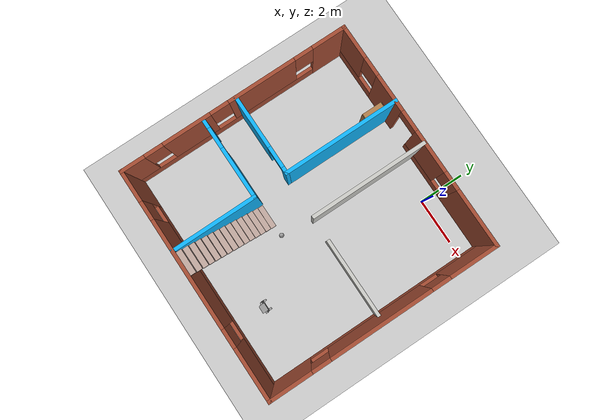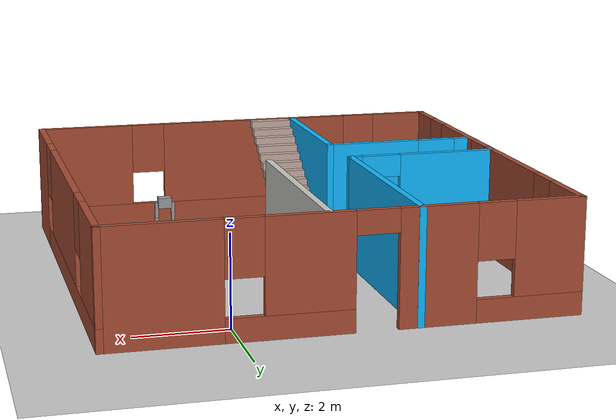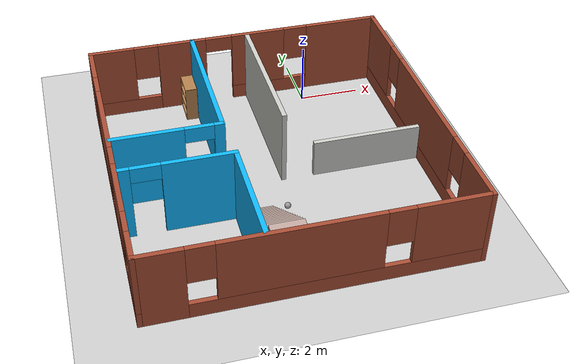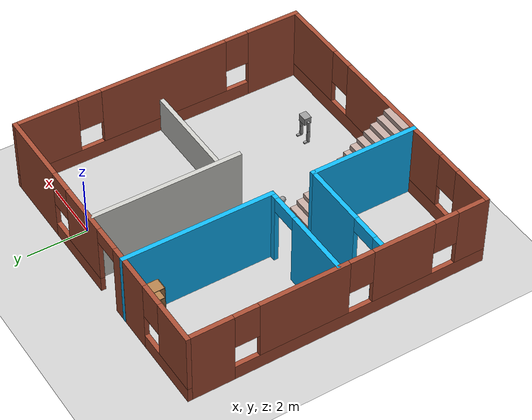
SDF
<sdf version="1.6">
 <world name="default">
  <plugin name="welcome_message" filename="libwelcome_message.so"/>
  <light name="sun" type="directional">
   <pose>0 0 10 0 -0 0</pose>
   <diffuse>0.8 0.8 0.8 1</diffuse>
   <specular>0.2 0.2 0.2 1</specular>
   <attenuation>
    <range>1000</range>
    <constant>0.9</constant>
    <linear>0.01</linear>
    <quadratic>0.001</quadratic>
   </attenuation>
   <direction>-0.5 0.1 -0.9</direction>
  </light>
  <model name="ground_plane">
   <static>1</static>
   <link name="link">
    <collision name="collision">
     <geometry><plane><normal>0 0 1</normal><size>100 100</size></plane></geometry>
     <surface><friction><ode><mu>100</mu><mu2>50</mu2></ode></friction></surface>
    </collision>
    <visual name="visual">
     <cast_shadows>0</cast_shadows>
     <geometry><plane><normal>0 0 1</normal><size>100 100</size></plane></geometry>
     <material>
      <script><uri>file://media/materials/scripts/gazebo.material</uri><name>Gazebo/Grey</name></script>
     </material>
    </visual>
   </link>
  </model>
  <gravity>0 0 -9.8</gravity>
  <magnetic_field>6e-06 2.3e-05 -4.2e-05</magnetic_field>
  <atmosphere type="adiabatic"/>
  <physics name="default_physics" default="0" type="ode">
   <max_step_size>0.001</max_step_size>
   <real_time_factor>1</real_time_factor>
   <real_time_update_rate>1000</real_time_update_rate>
  </physics>
  <scene><ambient>0.4 0.4 0.4 1</ambient><background>0.7 0.7 0.7 1</background><shadows>1</shadows></scene>
  <spherical_coordinates>
   <surface_model>EARTH_WGS84</surface_model>
   <latitude_deg>0</latitude_deg>
   <longitude_deg>0</longitude_deg>
   <elevation>0</elevation>
   <heading_deg>0</heading_deg>
  </spherical_coordinates>
  <model name="House">
   <pose>-2.1867 -4.17693 0 0 -0 0</pose>
   <link name="Stairs_1">
    <visual name="Stairs_1_Visual_0">
     <pose>-0.820824 -1.46811 0.083333 0 -0 0</pose>
     <geometry><box><size>1 0.233333 0.166667</size></box></geometry>
     <material>
      <script><uri>file://media/materials/scripts/gazebo.material</uri><name>Gazebo/Grey</name></script>
      <ambient>0.760784 0.662745 0.627451 1</ambient>
     </material>
     <meta><layer>0</layer></meta>
    </visual>
    <collision name="Stairs_1_Collision_0">
     <geometry><box><size>1 0.233333 0.166667</size></box></geometry>
     <pose>-0.820824 -1.46811 0.083333 0 -0 0</pose>
    </collision>
    <visual name="Stairs_1_Visual_1">
     <pose>-0.820824 -1.70145 0.25 0 -0 0</pose>
     <geometry><box><size>1 0.233333 0.166667</size></box></geometry>
     <material>
      <script><uri>file://media/materials/scripts/gazebo.material</uri><name>Gazebo/Grey</name></script>
      <ambient>0.760784 0.662745 0.627451 1</ambient>
     </material>
     <meta><layer>0</layer></meta>
    </visual>
    <collision name="Stairs_1_Collision_1">
     <geometry><box><size>1 0.233333 0.166667</size></box></geometry>
     <pose>-0.820824 -1.70145 0.25 0 -0 0</pose>
    </collision>
    <visual name="Stairs_1_Visual_2">
     <pose>-0.820824 -1.93478 0.416667 0 -0 0</pose>
     <geometry><box><size>1 0.233333 0.166667</size></box></geometry>
     <material>
      <script><uri>file://media/materials/scripts/gazebo.material</uri><name>Gazebo/Grey</name></script>
      <ambient>0.760784 0.662745 0.627451 1</ambient>
     </material>
     <meta><layer>0</layer></meta>
    </visual>
    <collision name="Stairs_1_Collision_2">
     <geometry><box><size>1 0.233333 0.166667</size></box></geometry>
     <pose>-0.820824 -1.93478 0.416667 0 -0 0</pose>
    </collision>
    <visual name="Stairs_1_Visual_3">
     <pose>-0.820824 -2.16811 0.583333 0 -0 0</pose>
     <geometry><box><size>1 0.233333 0.166667</size></box></geometry>
     <material>
      <script><uri>file://media/materials/scripts/gazebo.material</uri><name>Gazebo/Grey</name></script>
      <ambient>0.760784 0.662745 0.627451 1</ambient>
     </material>
     <meta><layer>0</layer></meta>
    </visual>
    <collision name="Stairs_1_Collision_3">
     <geometry><box><size>1 0.233333 0.166667</size></box></geometry>
     <pose>-0.820824 -2.16811 0.583333 0 -0 0</pose>
    </collision>
    <visual name="Stairs_1_Visual_4">
     <pose>-0.820824 -2.40145 0.75 0 -0 0</pose>
     <geometry><box><size>1 0.233333 0.166667</size></box></geometry>
     <material>
      <script><uri>file://media/materials/scripts/gazebo.material</uri><name>Gazebo/Grey</name></script>
      <ambient>0.760784 0.662745 0.627451 1</ambient>
     </material>
     <meta><layer>0</layer></meta>
    </visual>
    <collision name="Stairs_1_Collision_4">
     <geometry><box><size>1 0.233333 0.166667</size></box></geometry>
     <pose>-0.820824 -2.40145 0.75 0 -0 0</pose>
    </collision>
    <visual name="Stairs_1_Visual_5">
     <pose>-0.820824 -2.63478 0.916667 0 -0 0</pose>
     <geometry><box><size>1 0.233333 0.166667</size></box></geometry>
     <material>
      <script><uri>file://media/materials/scripts/gazebo.material</uri><name>Gazebo/Grey</name></script>
      <ambient>0.760784 0.662745 0.627451 1</ambient>
     </material>
     <meta><layer>0</layer></meta>
    </visual>
    <collision name="Stairs_1_Collision_5">
     <geometry><box><size>1 0.233333 0.166667</size></box></geometry>
     <pose>-0.820824 -2.63478 0.916667 0 -0 0</pose>
    </collision>
    <visual name="Stairs_1_Visual_6">
     <pose>-0.820824 -2.86811 1.08333 0 -0 0</pose>
     <geometry><box><size>1 0.233333 0.166667</size></box></geometry>
     <material>
      <script><uri>file://media/materials/scripts/gazebo.material</uri><name>Gazebo/Grey</name></script>
      <ambient>0.760784 0.662745 0.627451 1</ambient>
     </material>
     <meta><layer>0</layer></meta>
    </visual>
    <collision name="Stairs_1_Collision_6">
     <geometry><box><size>1 0.233333 0.166667</size></box></geometry>
     <pose>-0.820824 -2.86811 1.08333 0 -0 0</pose>
    </collision>
    <visual name="Stairs_1_Visual_7">
     <pose>-0.820824 -3.10145 1.25 0 -0 0</pose>
     <geometry><box><size>1 0.233333 0.166667</size></box></geometry>
     <material>
      <script><uri>file://media/materials/scripts/gazebo.material</uri><name>Gazebo/Grey</name></script>
      <ambient>0.760784 0.662745 0.627451 1</ambient>
     </material>
     <meta><layer>0</layer></meta>
    </visual>
    <collision name="Stairs_1_Collision_7">
     <geometry><box><size>1 0.233333 0.166667</size></box></geometry>
     <pose>-0.820824 -3.10145 1.25 0 -0 0</pose>
    </collision>
    <visual name="Stairs_1_Visual_8">
     <pose>-0.820824 -3.33478 1.41667 0 -0 0</pose>
     <geometry><box><size>1 0.233333 0.166667</size></box></geometry>
     <material>
      <script><uri>file://media/materials/scripts/gazebo.material</uri><name>Gazebo/Grey</name></script>
      <ambient>0.760784 0.662745 0.627451 1</ambient>
     </material>
     <meta><layer>0</layer></meta>
    </visual>
    <collision name="Stairs_1_Collision_8">
     <geometry><box><size>1 0.233333 0.166667</size></box></geometry>
     <pose>-0.820824 -3.33478 1.41667 0 -0 0</pose>
    </collision>
    <visual name="Stairs_1_Visual_9">
     <pose>-0.820824 -3.56811 1.58333 0 -0 0</pose>
     <geometry><box><size>1 0.233333 0.166667</size></box></geometry>
     <material>
      <script><uri>file://media/materials/scripts/gazebo.material</uri><name>Gazebo/Grey</name></script>
      <ambient>0.760784 0.662745 0.627451 1</ambient>
     </material>
     <meta><layer>0</layer></meta>
    </visual>
    <collision name="Stairs_1_Collision_9">
     <geometry><box><size>1 0.233333 0.166667</size></box></geometry>
     <pose>-0.820824 -3.56811 1.58333 0 -0 0</pose>
    </collision>
    <visual name="Stairs_1_Visual_10">
     <pose>-0.820824 -3.80145 1.75 0 -0 0</pose>
     <geometry><box><size>1 0.233333 0.166667</size></box></geometry>
     <material>
      <script><uri>file://media/materials/scripts/gazebo.material</uri><name>Gazebo/Grey</name></script>
      <ambient>0.760784 0.662745 0.627451 1</ambient>
     </material>
     <meta><layer>0</layer></meta>
    </visual>
    <collision name="Stairs_1_Collision_10">
     <geometry><box><size>1 0.233333 0.166667</size></box></geometry>
     <pose>-0.820824 -3.80145 1.75 0 -0 0</pose>
    </collision>
    <visual name="Stairs_1_Visual_11">
     <pose>-0.820824 -4.03478 1.91667 0 -0 0</pose>
     <geometry><box><size>1 0.233333 0.166667</size></box></geometry>
     <material>
      <script><uri>file://media/materials/scripts/gazebo.material</uri><name>Gazebo/Grey</name></script>
      <ambient>0.760784 0.662745 0.627451 1</ambient>
     </material>
     <meta><layer>0</layer></meta>
    </visual>
    <collision name="Stairs_1_Collision_11">
     <geometry><box><size>1 0.233333 0.166667</size></box></geometry>
     <pose>-0.820824 -4.03478 1.91667 0 -0 0</pose>
    </collision>
    <visual name="Stairs_1_Visual_12">
     <pose>-0.820824 -4.26811 2.08333 0 -0 0</pose>
     <geometry><box><size>1 0.233333 0.166667</size></box></geometry>
     <material>
      <script><uri>file://media/materials/scripts/gazebo.material</uri><name>Gazebo/Grey</name></script>
      <ambient>0.760784 0.662745 0.627451 1</ambient>
     </material>
     <meta><layer>0</layer></meta>
    </visual>
    <collision name="Stairs_1_Collision_12">
     <geometry><box><size>1 0.233333 0.166667</size></box></geometry>
     <pose>-0.820824 -4.26811 2.08333 0 -0 0</pose>
    </collision>
    <visual name="Stairs_1_Visual_13">
     <pose>-0.820824 -4.50145 2.25 0 -0 0</pose>
     <geometry><box><size>1 0.233333 0.166667</size></box></geometry>
     <material>
      <script><uri>file://media/materials/scripts/gazebo.material</uri><name>Gazebo/Grey</name></script>
      <ambient>0.760784 0.662745 0.627451 1</ambient>
     </material>
     <meta><layer>0</layer></meta>
    </visual>
    <collision name="Stairs_1_Collision_13">
     <geometry><box><size>1 0.233333 0.166667</size></box></geometry>
     <pose>-0.820824 -4.50145 2.25 0 -0 0</pose>
    </collision>
    <visual name="Stairs_1_Visual_14">
     <pose>-0.820824 -4.73478 2.41667 0 -0 0</pose>
     <geometry><box><size>1 0.233333 0.166667</size></box></geometry>
     <material>
      <script><uri>file://media/materials/scripts/gazebo.material</uri><name>Gazebo/Grey</name></script>
      <ambient>0.760784 0.662745 0.627451 1</ambient>
     </material>
     <meta><layer>0</layer></meta>
    </visual>
    <collision name="Stairs_1_Collision_14">
     <geometry><box><size>1 0.233333 0.166667</size></box></geometry>
     <pose>-0.820824 -4.73478 2.41667 0 -0 0</pose>
    </collision>
   </link>
   <link name="Wall_19">
    <collision name="Wall_19_Collision">
     <geometry><box><size>5 0.15 2.5</size></box></geometry>
     <pose>0 0 1.25 0 -0 0</pose>
    </collision>
    <visual name="Wall_19_Visual">
     <pose>0 0 1.25 0 -0 0</pose>
     <geometry><box><size>5 0.15 2.5</size></box></geometry>
     <material>
      <script><uri>file://media/materials/scripts/gazebo.material</uri><name>Gazebo/Grey</name></script>
      <ambient>0.0588235 0.717647 1 1</ambient>
     </material>
     <meta><layer>0</layer></meta>
    </visual>
    <pose>-1.52043 2.50149 0 0 0 -1.5708</pose>
   </link>
   <link name="Wall_21">
    <collision name="Wall_21_Collision">
     <geometry><box><size>5 0.15 2.5</size></box></geometry>
     <pose>0 0 1.25 0 -0 0</pose>
    </collision>
    <visual name="Wall_21_Visual">
     <pose>0 0 1.25 0 -0 0</pose>
     <geometry><box><size>5 0.15 2.5</size></box></geometry>
     <material>
      <script><uri>file://media/materials/scripts/gazebo.material</uri><name>Gazebo/CeilingTiled</name></script>
      <ambient>0.435294 0.796078 0.67451 1</ambient>
     </material>
     <meta><layer>0</layer></meta>
    </visual>
    <pose>0.368696 2.44893 0 0 0 -1.5708</pose>
   </link>
   <link name="Wall_23">
    <pose>-3.19543 0.076491 0 0 -0 3.14159</pose>
    <visual name="Wall_23_Visual_0">
     <pose>-1.58615 0 1.25 0 -0 0</pose>
     <geometry><box><size>0.3277 0.15 2.5</size></box></geometry>
     <material>
      <script><uri>file://media/materials/scripts/gazebo.material</uri><name>Gazebo/Grey</name></script>
      <ambient>0.0588235 0.717647 1 1</ambient>
     </material>
     <meta><layer>0</layer></meta>
    </visual>
    <collision name="Wall_23_Collision_0">
     <geometry><box><size>0.3277 0.15 2.5</size></box></geometry>
     <pose>-1.58615 0 1.25 0 -0 0</pose>
    </collision>
    <visual name="Wall_23_Visual_1">
     <pose>0.61385 0 1.25 0 -0 0</pose>
     <geometry><box><size>2.2723 0.15 2.5</size></box></geometry>
     <material>
      <script><uri>file://media/materials/scripts/gazebo.material</uri><name>Gazebo/Grey</name></script>
      <ambient>0.0588235 0.717647 1 1</ambient>
     </material>
     <meta><layer>0</layer></meta>
    </visual>
    <collision name="Wall_23_Collision_1">
     <geometry><box><size>2.2723 0.15 2.5</size></box></geometry>
     <pose>0.61385 0 1.25 0 -0 0</pose>
    </collision>
    <visual name="Wall_23_Visual_2">
     <pose>-0.9723 0 2.25 0 -0 0</pose>
     <geometry><box><size>0.9 0.15 0.5</size></box></geometry>
     <material>
      <script><uri>file://media/materials/scripts/gazebo.material</uri><name>Gazebo/Grey</name></script>
      <ambient>0.0588235 0.717647 1 1</ambient>
     </material>
     <meta><layer>0</layer></meta>
    </visual>
    <collision name="Wall_23_Collision_2">
     <geometry><box><size>0.9 0.15 0.5</size></box></geometry>
     <pose>-0.9723 0 2.25 0 -0 0</pose>
    </collision>
   </link>
   <link name="Wall_25">
    <collision name="Wall_25_Collision">
     <geometry><box><size>3.682 0.15 2.5</size></box></geometry>
     <pose>0 0 1.25 0 -0 0</pose>
    </collision>
    <visual name="Wall_25_Visual">
     <pose>0 0 1.25 0 -0 0</pose>
     <geometry><box><size>3.682 0.15 2.5</size></box></geometry>
     <material>
      <script><uri>file://media/materials/scripts/gazebo.material</uri><name>Gazebo/Grey</name></script>
      <ambient>0.0588235 0.717647 1 1</ambient>
     </material>
     <meta><layer>0</layer></meta>
    </visual>
    <pose>-1.4333 -3.15307 0 0 0 -1.5708</pose>
   </link>
   <link name="Wall_27">
    <pose>-3.1083 -1.38707 0 0 -0 3.14159</pose>
    <visual name="Wall_27_Visual_0">
     <pose>-0.624361 0 1.25 0 -0 0</pose>
     <geometry><box><size>2.25128 0.15 2.5</size></box></geometry>
     <material>
      <script><uri>file://media/materials/scripts/gazebo.material</uri><name>Gazebo/Grey</name></script>
      <ambient>0.0588235 0.717647 1 1</ambient>
     </material>
     <meta><layer>0</layer></meta>
    </visual>
    <collision name="Wall_27_Collision_0">
     <geometry><box><size>2.25128 0.15 2.5</size></box></geometry>
     <pose>-0.624361 0 1.25 0 -0 0</pose>
    </collision>
    <visual name="Wall_27_Visual_1">
     <pose>1.57564 0 1.25 0 -0 0</pose>
     <geometry><box><size>0.348721 0.15 2.5</size></box></geometry>
     <material>
      <script><uri>file://media/materials/scripts/gazebo.material</uri><name>Gazebo/Grey</name></script>
      <ambient>0.0588235 0.717647 1 1</ambient>
     </material>
     <meta><layer>0</layer></meta>
    </visual>
    <collision name="Wall_27_Collision_1">
     <geometry><box><size>0.348721 0.15 2.5</size></box></geometry>
     <pose>1.57564 0 1.25 0 -0 0</pose>
    </collision>
    <visual name="Wall_27_Visual_2">
     <pose>0.951279 0 2.25 0 -0 0</pose>
     <geometry><box><size>0.9 0.15 0.5</size></box></geometry>
     <material>
      <script><uri>file://media/materials/scripts/gazebo.material</uri><name>Gazebo/Grey</name></script>
      <ambient>0.0588235 0.717647 1 1</ambient>
     </material>
     <meta><layer>0</layer></meta>
    </visual>
    <collision name="Wall_27_Collision_2">
     <geometry><box><size>0.9 0.15 0.5</size></box></geometry>
     <pose>0.951279 0 2.25 0 -0 0</pose>
    </collision>
   </link>
   <link name="Wall_40">
    <pose>2.6507 0.025926 0 0 -0 0</pose>
    <visual name="Wall_40_Visual_0">
     <pose>-2.2287 0 0.625 0 -0 0</pose>
     <geometry><box><size>0.042594 0.15 1.25</size></box></geometry>
     <material>
      <script><uri>file://media/materials/scripts/gazebo.material</uri><name>Gazebo/CeilingTiled</name></script>
      <ambient>1 1 1 1</ambient>
     </material>
     <meta><layer>0</layer></meta>
    </visual>
    <collision name="Wall_40_Collision_0">
     <geometry><box><size>0.042594 0.15 1.25</size></box></geometry>
     <pose>-2.2287 0 0.625 0 -0 0</pose>
    </collision>
    <visual name="Wall_40_Visual_1">
     <pose>0.471297 0 0.625 0 -0 0</pose>
     <geometry><box><size>3.55741 0.15 1.25</size></box></geometry>
     <material>
      <script><uri>file://media/materials/scripts/gazebo.material</uri><name>Gazebo/CeilingTiled</name></script>
      <ambient>1 1 1 1</ambient>
     </material>
     <meta><layer>0</layer></meta>
    </visual>
    <collision name="Wall_40_Collision_1">
     <geometry><box><size>3.55741 0.15 1.25</size></box></geometry>
     <pose>0.471297 0 0.625 0 -0 0</pose>
    </collision>
   </link>
   <link name="Wall_5">
    <pose>-4.925 -0.001492 0 0 0 -1.5708</pose>
    <visual name="Wall_5_Visual_0">
     <pose>-4.24263 0 1.25 0 -0 0</pose>
     <geometry><box><size>1.51473 0.15 2.5</size></box></geometry>
     <material>
      <script><uri>file://media/materials/scripts/gazebo.material</uri><name>Gazebo/Bricks</name></script>
      <ambient>1 1 1 1</ambient>
     </material>
     <meta><layer>0</layer></meta>
    </visual>
    <collision name="Wall_5_Collision_0">
     <geometry><box><size>1.51473 0.15 2.5</size></box></geometry>
     <pose>-4.24263 0 1.25 0 -0 0</pose>
    </collision>
    <visual name="Wall_5_Visual_1">
     <pose>0.757368 0 0.25 0 -0 0</pose>
     <geometry><box><size>8.48527 0.15 0.5</size></box></geometry>
     <material>
      <script><uri>file://media/materials/scripts/gazebo.material</uri><name>Gazebo/Bricks</name></script>
      <ambient>1 1 1 1</ambient>
     </material>
     <meta><layer>0</layer></meta>
    </visual>
    <collision name="Wall_5_Collision_1">
     <geometry><box><size>8.48527 0.15 0.5</size></box></geometry>
     <pose>0.757368 0 0.25 0 -0 0</pose>
    </collision>
    <visual name="Wall_5_Visual_2">
     <pose>-1.21634 0 1.5 0 -0 0</pose>
     <geometry><box><size>2.93785 0.15 2</size></box></geometry>
     <material>
      <script><uri>file://media/materials/scripts/gazebo.material</uri><name>Gazebo/Bricks</name></script>
      <ambient>1 1 1 1</ambient>
     </material>
     <meta><layer>0</layer></meta>
    </visual>
    <collision name="Wall_5_Collision_2">
     <geometry><box><size>2.93785 0.15 2</size></box></geometry>
     <pose>-1.21634 0 1.5 0 -0 0</pose>
    </collision>
    <visual name="Wall_5_Visual_3">
     <pose>2.08928 0 1.5 0 -0 0</pose>
     <geometry><box><size>2.0734 0.15 2</size></box></geometry>
     <material>
      <script><uri>file://media/materials/scripts/gazebo.material</uri><name>Gazebo/Bricks</name></script>
      <ambient>1 1 1 1</ambient>
     </material>
     <meta><layer>0</layer></meta>
    </visual>
    <collision name="Wall_5_Collision_3">
     <geometry><box><size>2.0734 0.15 2</size></box></geometry>
     <pose>2.08928 0 1.5 0 -0 0</pose>
    </collision>
    <visual name="Wall_5_Visual_4">
     <pose>4.46299 0 1.5 0 -0 0</pose>
     <geometry><box><size>1.07402 0.15 2</size></box></geometry>
     <material>
      <script><uri>file://media/materials/scripts/gazebo.material</uri><name>Gazebo/Bricks</name></script>
      <ambient>1 1 1 1</ambient>
     </material>
     <meta><layer>0</layer></meta>
    </visual>
    <collision name="Wall_5_Collision_4">
     <geometry><box><size>1.07402 0.15 2</size></box></geometry>
     <pose>4.46299 0 1.5 0 -0 0</pose>
    </collision>
    <visual name="Wall_5_Visual_5">
     <pose>-3.08527 0 1.9 0 -0 0</pose>
     <geometry><box><size>0.8 0.15 1.2</size></box></geometry>
     <material>
      <script><uri>file://media/materials/scripts/gazebo.material</uri><name>Gazebo/Bricks</name></script>
      <ambient>1 1 1 1</ambient>
     </material>
     <meta><layer>0</layer></meta>
    </visual>
    <collision name="Wall_5_Collision_5">
     <geometry><box><size>0.8 0.15 1.2</size></box></geometry>
     <pose>-3.08527 0 1.9 0 -0 0</pose>
    </collision>
    <visual name="Wall_5_Visual_6">
     <pose>0.652583 0 1.9 0 -0 0</pose>
     <geometry><box><size>0.8 0.15 1.2</size></box></geometry>
     <material>
      <script><uri>file://media/materials/scripts/gazebo.material</uri><name>Gazebo/Bricks</name></script>
      <ambient>1 1 1 1</ambient>
     </material>
     <meta><layer>0</layer></meta>
    </visual>
    <collision name="Wall_5_Collision_6">
     <geometry><box><size>0.8 0.15 1.2</size></box></geometry>
     <pose>0.652583 0 1.9 0 -0 0</pose>
    </collision>
    <visual name="Wall_5_Visual_7">
     <pose>3.52598 0 1.9 0 -0 0</pose>
     <geometry><box><size>0.8 0.15 1.2</size></box></geometry>
     <material>
      <script><uri>file://media/materials/scripts/gazebo.material</uri><name>Gazebo/Bricks</name></script>
      <ambient>1 1 1 1</ambient>
     </material>
     <meta><layer>0</layer></meta>
    </visual>
    <collision name="Wall_5_Collision_7">
     <geometry><box><size>0.8 0.15 1.2</size></box></geometry>
     <pose>3.52598 0 1.9 0 -0 0</pose>
    </collision>
   </link>
   <link name="Wall_6">
    <pose>0 -4.92649 0 0 -0 0</pose>
    <visual name="Wall_6_Visual_0">
     <pose>-4.29512 0 1.25 0 -0 0</pose>
     <geometry><box><size>1.40977 0.15 2.5</size></box></geometry>
     <material>
      <script><uri>file://media/materials/scripts/gazebo.material</uri><name>Gazebo/Bricks</name></script>
      <ambient>1 1 1 1</ambient>
     </material>
     <meta><layer>0</layer></meta>
    </visual>
    <collision name="Wall_6_Collision_0">
     <geometry><box><size>1.40977 0.15 2.5</size></box></geometry>
     <pose>-4.29512 0 1.25 0 -0 0</pose>
    </collision>
    <visual name="Wall_6_Visual_1">
     <pose>0.704885 0 0.25 0 -0 0</pose>
     <geometry><box><size>8.59023 0.15 0.5</size></box></geometry>
     <material>
      <script><uri>file://media/materials/scripts/gazebo.material</uri><name>Gazebo/Bricks</name></script>
      <ambient>1 1 1 1</ambient>
     </material>
     <meta><layer>0</layer></meta>
    </visual>
    <collision name="Wall_6_Collision_1">
     <geometry><box><size>8.59023 0.15 0.5</size></box></geometry>
     <pose>0.704885 0 0.25 0 -0 0</pose>
    </collision>
    <visual name="Wall_6_Visual_2">
     <pose>-0.444895 0 1.5 0 -0 0</pose>
     <geometry><box><size>4.69067 0.15 2</size></box></geometry>
     <material>
      <script><uri>file://media/materials/scripts/gazebo.material</uri><name>Gazebo/Bricks</name></script>
      <ambient>1 1 1 1</ambient>
     </material>
     <meta><layer>0</layer></meta>
    </visual>
    <collision name="Wall_6_Collision_2">
     <geometry><box><size>4.69067 0.15 2</size></box></geometry>
     <pose>-0.444895 0 1.5 0 -0 0</pose>
    </collision>
    <visual name="Wall_6_Visual_3">
     <pose>3.85022 0 1.5 0 -0 0</pose>
     <geometry><box><size>2.29956 0.15 2</size></box></geometry>
     <material>
      <script><uri>file://media/materials/scripts/gazebo.material</uri><name>Gazebo/Bricks</name></script>
      <ambient>1 1 1 1</ambient>
     </material>
     <meta><layer>0</layer></meta>
    </visual>
    <collision name="Wall_6_Collision_3">
     <geometry><box><size>2.29956 0.15 2</size></box></geometry>
     <pose>3.85022 0 1.5 0 -0 0</pose>
    </collision>
    <visual name="Wall_6_Visual_4">
     <pose>-3.19023 0 1.9 0 -0 0</pose>
     <geometry><box><size>0.8 0.15 1.2</size></box></geometry>
     <material>
      <script><uri>file://media/materials/scripts/gazebo.material</uri><name>Gazebo/Bricks</name></script>
      <ambient>1 1 1 1</ambient>
     </material>
     <meta><layer>0</layer></meta>
    </visual>
    <collision name="Wall_6_Collision_4">
     <geometry><box><size>0.8 0.15 1.2</size></box></geometry>
     <pose>-3.19023 0 1.9 0 -0 0</pose>
    </collision>
    <visual name="Wall_6_Visual_5">
     <pose>2.30044 0 1.9 0 -0 0</pose>
     <geometry><box><size>0.8 0.15 1.2</size></box></geometry>
     <material>
      <script><uri>file://media/materials/scripts/gazebo.material</uri><name>Gazebo/Bricks</name></script>
      <ambient>1 1 1 1</ambient>
     </material>
     <meta><layer>0</layer></meta>
    </visual>
    <collision name="Wall_6_Collision_5">
     <geometry><box><size>0.8 0.15 1.2</size></box></geometry>
     <pose>2.30044 0 1.9 0 -0 0</pose>
    </collision>
   </link>
   <link name="Wall_7">
    <pose>4.925 -0.001492 0 0 -0 1.5708</pose>
    <visual name="Wall_7_Visual_0">
     <pose>-4.05694 0 1.25 0 -0 0</pose>
     <geometry><box><size>1.88613 0.15 2.5</size></box></geometry>
     <material>
      <script><uri>file://media/materials/scripts/gazebo.material</uri><name>Gazebo/Bricks</name></script>
      <ambient>1 1 1 1</ambient>
     </material>
     <meta><layer>0</layer></meta>
    </visual>
    <collision name="Wall_7_Collision_0">
     <geometry><box><size>1.88613 0.15 2.5</size></box></geometry>
     <pose>-4.05694 0 1.25 0 -0 0</pose>
    </collision>
    <visual name="Wall_7_Visual_1">
     <pose>0.943065 0 0.25 0 -0 0</pose>
     <geometry><box><size>8.11387 0.15 0.5</size></box></geometry>
     <material>
      <script><uri>file://media/materials/scripts/gazebo.material</uri><name>Gazebo/Bricks</name></script>
      <ambient>1 1 1 1</ambient>
     </material>
     <meta><layer>0</layer></meta>
    </visual>
    <collision name="Wall_7_Collision_1">
     <geometry><box><size>8.11387 0.15 0.5</size></box></geometry>
     <pose>0.943065 0 0.25 0 -0 0</pose>
    </collision>
    <visual name="Wall_7_Visual_2">
     <pose>-0.118907 0 1.5 0 -0 0</pose>
     <geometry><box><size>4.38993 0.15 2</size></box></geometry>
     <material>
      <script><uri>file://media/materials/scripts/gazebo.material</uri><name>Gazebo/Bricks</name></script>
      <ambient>1 1 1 1</ambient>
     </material>
     <meta><layer>0</layer></meta>
    </visual>
    <collision name="Wall_7_Collision_2">
     <geometry><box><size>4.38993 0.15 2</size></box></geometry>
     <pose>-0.118907 0 1.5 0 -0 0</pose>
    </collision>
    <visual name="Wall_7_Visual_3">
     <pose>3.93803 0 1.5 0 -0 0</pose>
     <geometry><box><size>2.12394 0.15 2</size></box></geometry>
     <material>
      <script><uri>file://media/materials/scripts/gazebo.material</uri><name>Gazebo/Bricks</name></script>
      <ambient>1 1 1 1</ambient>
     </material>
     <meta><layer>0</layer></meta>
    </visual>
    <collision name="Wall_7_Collision_3">
     <geometry><box><size>2.12394 0.15 2</size></box></geometry>
     <pose>3.93803 0 1.5 0 -0 0</pose>
    </collision>
    <visual name="Wall_7_Visual_4">
     <pose>-2.71387 0 1.9 0 -0 0</pose>
     <geometry><box><size>0.8 0.15 1.2</size></box></geometry>
     <material>
      <script><uri>file://media/materials/scripts/gazebo.material</uri><name>Gazebo/Bricks</name></script>
      <ambient>1 1 1 1</ambient>
     </material>
     <meta><layer>0</layer></meta>
    </visual>
    <collision name="Wall_7_Collision_4">
     <geometry><box><size>0.8 0.15 1.2</size></box></geometry>
     <pose>-2.71387 0 1.9 0 -0 0</pose>
    </collision>
    <visual name="Wall_7_Visual_5">
     <pose>2.47606 0 1.9 0 -0 0</pose>
     <geometry><box><size>0.8 0.15 1.2</size></box></geometry>
     <material>
      <script><uri>file://media/materials/scripts/gazebo.material</uri><name>Gazebo/Bricks</name></script>
      <ambient>1 1 1 1</ambient>
     </material>
     <meta><layer>0</layer></meta>
    </visual>
    <collision name="Wall_7_Collision_5">
     <geometry><box><size>0.8 0.15 1.2</size></box></geometry>
     <pose>2.47606 0 1.9 0 -0 0</pose>
    </collision>
   </link>
   <link name="Wall_8">
    <pose>0 4.92351 0 0 -0 3.14159</pose>
    <visual name="Wall_8_Visual_0">
     <pose>-3.74126 0 1.25 0 -0 0</pose>
     <geometry><box><size>2.51747 0.15 2.5</size></box></geometry>
     <material>
      <script><uri>file://media/materials/scripts/gazebo.material</uri><name>Gazebo/Bricks</name></script>
      <ambient>1 1 1 1</ambient>
     </material>
     <meta><layer>0</layer></meta>
    </visual>
    <collision name="Wall_8_Collision_0">
     <geometry><box><size>2.51747 0.15 2.5</size></box></geometry>
     <pose>-3.74126 0 1.25 0 -0 0</pose>
    </collision>
    <visual name="Wall_8_Visual_1">
     <pose>1.87774 0 1.25 0 -0 0</pose>
     <geometry><box><size>1.63359 0.15 2.5</size></box></geometry>
     <material>
      <script><uri>file://media/materials/scripts/gazebo.material</uri><name>Gazebo/Bricks</name></script>
      <ambient>1 1 1 1</ambient>
     </material>
     <meta><layer>0</layer></meta>
    </visual>
    <collision name="Wall_8_Collision_1">
     <geometry><box><size>1.63359 0.15 2.5</size></box></geometry>
     <pose>1.87774 0 1.25 0 -0 0</pose>
    </collision>
    <visual name="Wall_8_Visual_2">
     <pose>-1.16079 0 0.25 0 -0 0</pose>
     <geometry><box><size>2.64347 0.15 0.5</size></box></geometry>
     <material>
      <script><uri>file://media/materials/scripts/gazebo.material</uri><name>Gazebo/Bricks</name></script>
      <ambient>1 1 1 1</ambient>
     </material>
     <meta><layer>0</layer></meta>
    </visual>
    <collision name="Wall_8_Collision_2">
     <geometry><box><size>2.64347 0.15 0.5</size></box></geometry>
     <pose>-1.16079 0 0.25 0 -0 0</pose>
    </collision>
    <visual name="Wall_8_Visual_3">
     <pose>3.84727 0 0.25 0 -0 0</pose>
     <geometry><box><size>2.30547 0.15 0.5</size></box></geometry>
     <material>
      <script><uri>file://media/materials/scripts/gazebo.material</uri><name>Gazebo/Bricks</name></script>
      <ambient>1 1 1 1</ambient>
     </material>
     <meta><layer>0</layer></meta>
    </visual>
    <collision name="Wall_8_Collision_3">
     <geometry><box><size>2.30547 0.15 0.5</size></box></geometry>
     <pose>3.84727 0 0.25 0 -0 0</pose>
    </collision>
    <visual name="Wall_8_Visual_4">
     <pose>-0.760792 0 1.5 0 -0 0</pose>
     <geometry><box><size>1.84347 0.15 2</size></box></geometry>
     <material>
      <script><uri>file://media/materials/scripts/gazebo.material</uri><name>Gazebo/Bricks</name></script>
      <ambient>1 1 1 1</ambient>
     </material>
     <meta><layer>0</layer></meta>
    </visual>
    <collision name="Wall_8_Collision_4">
     <geometry><box><size>1.84347 0.15 2</size></box></geometry>
     <pose>-0.760792 0 1.5 0 -0 0</pose>
    </collision>
    <visual name="Wall_8_Visual_5">
     <pose>-0.760792 0 1.5 0 -0 0</pose>
     <geometry><box><size>1.84347 0.15 2</size></box></geometry>
     <material>
      <script><uri>file://media/materials/scripts/gazebo.material</uri><name>Gazebo/Bricks</name></script>
      <ambient>1 1 1 1</ambient>
     </material>
     <meta><layer>0</layer></meta>
    </visual>
    <collision name="Wall_8_Collision_5">
     <geometry><box><size>1.84347 0.15 2</size></box></geometry>
     <pose>-0.760792 0 1.5 0 -0 0</pose>
    </collision>
    <visual name="Wall_8_Visual_6">
     <pose>4.24727 0 1.5 0 -0 0</pose>
     <geometry><box><size>1.50547 0.15 2</size></box></geometry>
     <material>
      <script><uri>file://media/materials/scripts/gazebo.material</uri><name>Gazebo/Bricks</name></script>
      <ambient>1 1 1 1</ambient>
     </material>
     <meta><layer>0</layer></meta>
    </visual>
    <collision name="Wall_8_Collision_6">
     <geometry><box><size>1.50547 0.15 2</size></box></geometry>
     <pose>4.24727 0 1.5 0 -0 0</pose>
    </collision>
    <visual name="Wall_8_Visual_7">
     <pose>-2.08253 0 1.9 0 -0 0</pose>
     <geometry><box><size>0.8 0.15 1.2</size></box></geometry>
     <material>
      <script><uri>file://media/materials/scripts/gazebo.material</uri><name>Gazebo/Bricks</name></script>
      <ambient>1 1 1 1</ambient>
     </material>
     <meta><layer>0</layer></meta>
    </visual>
    <collision name="Wall_8_Collision_7">
     <geometry><box><size>0.8 0.15 1.2</size></box></geometry>
     <pose>-2.08253 0 1.9 0 -0 0</pose>
    </collision>
    <visual name="Wall_8_Visual_8">
     <pose>3.09453 0 1.9 0 -0 0</pose>
     <geometry><box><size>0.8 0.15 1.2</size></box></geometry>
     <material>
      <script><uri>file://media/materials/scripts/gazebo.material</uri><name>Gazebo/Bricks</name></script>
      <ambient>1 1 1 1</ambient>
     </material>
     <meta><layer>0</layer></meta>
    </visual>
    <collision name="Wall_8_Collision_8">
     <geometry><box><size>0.8 0.15 1.2</size></box></geometry>
     <pose>3.09453 0 1.9 0 -0 0</pose>
    </collision>
    <visual name="Wall_8_Visual_9">
     <pose>0.610943 0 2.25 0 -0 0</pose>
     <geometry><box><size>0.9 0.15 0.5</size></box></geometry>
     <material>
      <script><uri>file://media/materials/scripts/gazebo.material</uri><name>Gazebo/Bricks</name></script>
      <ambient>1 1 1 1</ambient>
     </material>
     <meta><layer>0</layer></meta>
    </visual>
    <collision name="Wall_8_Collision_9">
     <geometry><box><size>0.9 0.15 0.5</size></box></geometry>
     <pose>0.610943 0 2.25 0 -0 0</pose>
    </collision>
    <visual name="Wall_8_Visual_10">
     <pose>0.610943 0 2.25 0 -0 0</pose>
     <geometry><box><size>0.9 0.15 0.5</size></box></geometry>
     <material>
      <script><uri>file://media/materials/scripts/gazebo.material</uri><name>Gazebo/Bricks</name></script>
      <ambient>1 1 1 1</ambient>
     </material>
     <meta><layer>0</layer></meta>
    </visual>
    <collision name="Wall_8_Collision_10">
     <geometry><box><size>0.9 0.15 0.5</size></box></geometry>
     <pose>0.610943 0 2.25 0 -0 0</pose>
    </collision>
   </link>
   <static>1</static>
  </model>
  <model name="humanoid">
   <link name="link_0">
    <pose>0.043928 -0.199999 -0.333571 0 -0 0</pose>
    <inertial>
     <mass>1</mass>
     <inertia>
      <ixx>0.166667</ixx>
      <ixy>0</ixy>
      <ixz>0</ixz>
      <iyy>0.166667</iyy>
      <iyz>0</iyz>
      <izz>0.166667</izz>
     </inertia>
    </inertial>
    <visual name="visual">
     <geometry><box><size>0.2 0.08 0.05</size></box></geometry>
     <material>
      <lighting>1</lighting>
      <script><uri>file://media/materials/scripts/gazebo.material</uri><name>Gazebo/Grey</name></script>
      <ambient>0.3 0.3 0.3 1</ambient>
      <diffuse>0.7 0.7 0.7 1</diffuse>
      <specular>0.01 0.01 0.01 1</specular>
      <emissive>0 0 0 1</emissive>
      <shader type="vertex"><normal_map>__default__</normal_map></shader>
     </material>
    </visual>
    <collision name="collision">
     <geometry><box><size>0.2 0.08 0.05</size></box></geometry>
     <surface>
      <friction>
       <ode><mu>1</mu><mu2>1</mu2><fdir1>0 0 0</fdir1><slip1>0</slip1><slip2>0</slip2></ode>
       <torsional>
        <coefficient>1</coefficient>
        <patch_radius>0</patch_radius>
        <surface_radius>0</surface_radius>
        <use_patch_radius>1</use_patch_radius>
        <ode><slip>0</slip></ode>
       </torsional>
      </friction>
      <bounce><restitution_coefficient>0</restitution_coefficient><threshold>1e+06</threshold></bounce>
      <contact>
       <collide_without_contact>0</collide_without_contact>
       <collide_without_contact_bitmask>1</collide_without_contact_bitmask>
       <collide_bitmask>1</collide_bitmask>
       <ode>
        <soft_cfm>0</soft_cfm>
        <soft_erp>0.2</soft_erp>
        <kp>1e+13</kp>
        <kd>1</kd>
        <max_vel>0.01</max_vel>
        <min_depth>0</min_depth>
       </ode>
       <bullet>
        <split_impulse>1</split_impulse>
        <split_impulse_penetration_threshold>-0.01</split_impulse_penetration_threshold>
        <soft_cfm>0</soft_cfm>
        <soft_erp>0.2</soft_erp>
        <kp>1e+13</kp>
        <kd>1</kd>
       </bullet>
      </contact>
     </surface>
    </collision>
   </link>
   <link name="link_0_clone">
    <pose>0.043928 0.200001 -0.333571 0 -0 0</pose>
    <inertial>
     <mass>1</mass>
     <inertia>
      <ixx>0.166667</ixx>
      <ixy>0</ixy>
      <ixz>0</ixz>
      <iyy>0.166667</iyy>
      <iyz>0</iyz>
      <izz>0.166667</izz>
     </inertia>
    </inertial>
    <visual name="visual">
     <geometry><box><size>0.2 0.08 0.05</size></box></geometry>
     <material>
      <lighting>1</lighting>
      <script><uri>file://media/materials/scripts/gazebo.material</uri><name>Gazebo/Grey</name></script>
      <ambient>0.3 0.3 0.3 1</ambient>
      <diffuse>0.7 0.7 0.7 1</diffuse>
      <specular>0.01 0.01 0.01 1</specular>
      <emissive>0 0 0 1</emissive>
      <shader type="vertex"><normal_map>__default__</normal_map></shader>
     </material>
    </visual>
    <collision name="collision">
     <geometry><box><size>0.2 0.08 0.05</size></box></geometry>
     <surface>
      <friction>
       <ode><mu>1</mu><mu2>1</mu2><fdir1>0 0 0</fdir1><slip1>0</slip1><slip2>0</slip2></ode>
       <torsional>
        <coefficient>1</coefficient>
        <patch_radius>0</patch_radius>
        <surface_radius>0</surface_radius>
        <use_patch_radius>1</use_patch_radius>
        <ode><slip>0</slip></ode>
       </torsional>
      </friction>
      <bounce><restitution_coefficient>0</restitution_coefficient><threshold>1e+06</threshold></bounce>
      <contact>
       <collide_without_contact>0</collide_without_contact>
       <collide_without_contact_bitmask>1</collide_without_contact_bitmask>
       <collide_bitmask>1</collide_bitmask>
       <ode>
        <soft_cfm>0</soft_cfm>
        <soft_erp>0.2</soft_erp>
        <kp>1e+13</kp>
        <kd>1</kd>
        <max_vel>0.01</max_vel>
        <min_depth>0</min_depth>
       </ode>
       <bullet>
        <split_impulse>1</split_impulse>
        <split_impulse_penetration_threshold>-0.01</split_impulse_penetration_threshold>
        <soft_cfm>0</soft_cfm>
        <soft_erp>0.2</soft_erp>
        <kp>1e+13</kp>
        <kd>1</kd>
       </bullet>
      </contact>
     </surface>
    </collision>
   </link>
   <link name="link_0_clone_0">
    <pose>-0.016072 -0.199999 -0.133571 0 -0 0</pose>
    <inertial>
     <mass>1</mass>
     <inertia>
      <ixx>0.166667</ixx>
      <ixy>0</ixy>
      <ixz>0</ixz>
      <iyy>0.166667</iyy>
      <iyz>0</iyz>
      <izz>0.166667</izz>
     </inertia>
    </inertial>
    <visual name="visual">
     <geometry><box><size>0.08 0.08 0.45</size></box></geometry>
     <material>
      <lighting>1</lighting>
      <script><uri>file://media/materials/scripts/gazebo.material</uri><name>Gazebo/Grey</name></script>
      <ambient>0.3 0.3 0.3 1</ambient>
      <diffuse>0.7 0.7 0.7 1</diffuse>
      <specular>0.01 0.01 0.01 1</specular>
      <emissive>0 0 0 1</emissive>
      <shader type="vertex"><normal_map>__default__</normal_map></shader>
     </material>
    </visual>
    <collision name="collision">
     <geometry><box><size>0.08 0.08 0.45</size></box></geometry>
     <surface>
      <friction>
       <ode><mu>1</mu><mu2>1</mu2><fdir1>0 0 0</fdir1><slip1>0</slip1><slip2>0</slip2></ode>
       <torsional>
        <coefficient>1</coefficient>
        <patch_radius>0</patch_radius>
        <surface_radius>0</surface_radius>
        <use_patch_radius>1</use_patch_radius>
        <ode><slip>0</slip></ode>
       </torsional>
      </friction>
      <bounce><restitution_coefficient>0</restitution_coefficient><threshold>1e+06</threshold></bounce>
      <contact>
       <collide_without_contact>0</collide_without_contact>
       <collide_without_contact_bitmask>1</collide_without_contact_bitmask>
       <collide_bitmask>1</collide_bitmask>
       <ode>
        <soft_cfm>0</soft_cfm>
        <soft_erp>0.2</soft_erp>
        <kp>1e+13</kp>
        <kd>1</kd>
        <max_vel>0.01</max_vel>
        <min_depth>0</min_depth>
       </ode>
       <bullet>
        <split_impulse>1</split_impulse>
        <split_impulse_penetration_threshold>-0.01</split_impulse_penetration_threshold>
        <soft_cfm>0</soft_cfm>
        <soft_erp>0.2</soft_erp>
        <kp>1e+13</kp>
        <kd>1</kd>
       </bullet>
      </contact>
     </surface>
    </collision>
   </link>
   <link name="link_0_clone_0_clone">
    <pose>-0.016072 0.200001 -0.133571 0 -0 0</pose>
    <inertial>
     <mass>1</mass>
     <inertia>
      <ixx>0.166667</ixx>
      <ixy>0</ixy>
      <ixz>0</ixz>
      <iyy>0.166667</iyy>
      <iyz>0</iyz>
      <izz>0.166667</izz>
     </inertia>
    </inertial>
    <visual name="visual">
     <geometry><box><size>0.08 0.08 0.45</size></box></geometry>
     <material>
      <lighting>1</lighting>
      <script><uri>file://media/materials/scripts/gazebo.material</uri><name>Gazebo/Grey</name></script>
      <ambient>0.3 0.3 0.3 1</ambient>
      <diffuse>0.7 0.7 0.7 1</diffuse>
      <specular>0.01 0.01 0.01 1</specular>
      <emissive>0 0 0 1</emissive>
      <shader type="vertex"><normal_map>__default__</normal_map></shader>
     </material>
    </visual>
    <collision name="collision">
     <geometry><box><size>0.08 0.08 0.45</size></box></geometry>
     <surface>
      <friction>
       <ode><mu>1</mu><mu2>1</mu2><fdir1>0 0 0</fdir1><slip1>0</slip1><slip2>0</slip2></ode>
       <torsional>
        <coefficient>1</coefficient>
        <patch_radius>0</patch_radius>
        <surface_radius>0</surface_radius>
        <use_patch_radius>1</use_patch_radius>
        <ode><slip>0</slip></ode>
       </torsional>
      </friction>
      <bounce><restitution_coefficient>0</restitution_coefficient><threshold>1e+06</threshold></bounce>
      <contact>
       <collide_without_contact>0</collide_without_contact>
       <collide_without_contact_bitmask>1</collide_without_contact_bitmask>
       <collide_bitmask>1</collide_bitmask>
       <ode>
        <soft_cfm>0</soft_cfm>
        <soft_erp>0.2</soft_erp>
        <kp>1e+13</kp>
        <kd>1</kd>
        <max_vel>0.01</max_vel>
        <min_depth>0</min_depth>
       </ode>
       <bullet>
        <split_impulse>1</split_impulse>
        <split_impulse_penetration_threshold>-0.01</split_impulse_penetration_threshold>
        <soft_cfm>0</soft_cfm>
        <soft_erp>0.2</soft_erp>
        <kp>1e+13</kp>
        <kd>1</kd>
       </bullet>
      </contact>
     </surface>
    </collision>
   </link>
   <link name="link_0_clone_0_clone_0">
    <pose>-0.016072 -0.199999 0.236429 0 -0 0</pose>
    <inertial>
     <mass>1</mass>
     <inertia>
      <ixx>0.166667</ixx>
      <ixy>0</ixy>
      <ixz>0</ixz>
      <iyy>0.166667</iyy>
      <iyz>0</iyz>
      <izz>0.166667</izz>
     </inertia>
    </inertial>
    <visual name="visual">
     <geometry><box><size>0.08 0.08 0.45</size></box></geometry>
     <material>
      <lighting>1</lighting>
      <script><uri>file://media/materials/scripts/gazebo.material</uri><name>Gazebo/Grey</name></script>
      <ambient>0.3 0.3 0.3 1</ambient>
      <diffuse>0.7 0.7 0.7 1</diffuse>
      <specular>0.01 0.01 0.01 1</specular>
      <emissive>0 0 0 1</emissive>
      <shader type="vertex"><normal_map>__default__</normal_map></shader>
     </material>
    </visual>
    <collision name="collision">
     <geometry><box><size>0.08 0.08 0.45</size></box></geometry>
     <surface>
      <friction>
       <ode><mu>1</mu><mu2>1</mu2><fdir1>0 0 0</fdir1><slip1>0</slip1><slip2>0</slip2></ode>
       <torsional>
        <coefficient>1</coefficient>
        <patch_radius>0</patch_radius>
        <surface_radius>0</surface_radius>
        <use_patch_radius>1</use_patch_radius>
        <ode><slip>0</slip></ode>
       </torsional>
      </friction>
      <bounce><restitution_coefficient>0</restitution_coefficient><threshold>1e+06</threshold></bounce>
      <contact>
       <collide_without_contact>0</collide_without_contact>
       <collide_without_contact_bitmask>1</collide_without_contact_bitmask>
       <collide_bitmask>1</collide_bitmask>
       <ode>
        <soft_cfm>0</soft_cfm>
        <soft_erp>0.2</soft_erp>
        <kp>1e+13</kp>
        <kd>1</kd>
        <max_vel>0.01</max_vel>
        <min_depth>0</min_depth>
       </ode>
       <bullet>
        <split_impulse>1</split_impulse>
        <split_impulse_penetration_threshold>-0.01</split_impulse_penetration_threshold>
        <soft_cfm>0</soft_cfm>
        <soft_erp>0.2</soft_erp>
        <kp>1e+13</kp>
        <kd>1</kd>
       </bullet>
      </contact>
     </surface>
    </collision>
   </link>
   <link name="link_0_clone_0_clone_0_clone">
    <pose>-0.016072 0.200001 0.236429 0 -0 0</pose>
    <inertial>
     <mass>1</mass>
     <inertia>
      <ixx>0.166667</ixx>
      <ixy>0</ixy>
      <ixz>0</ixz>
      <iyy>0.166667</iyy>
      <iyz>0</iyz>
      <izz>0.166667</izz>
     </inertia>
    </inertial>
    <visual name="visual">
     <geometry><box><size>0.08 0.08 0.45</size></box></geometry>
     <material>
      <lighting>1</lighting>
      <script><uri>file://media/materials/scripts/gazebo.material</uri><name>Gazebo/Grey</name></script>
      <ambient>0.3 0.3 0.3 1</ambient>
      <diffuse>0.7 0.7 0.7 1</diffuse>
      <specular>0.01 0.01 0.01 1</specular>
      <emissive>0 0 0 1</emissive>
      <shader type="vertex"><normal_map>__default__</normal_map></shader>
     </material>
    </visual>
    <collision name="collision">
     <geometry><box><size>0.08 0.08 0.45</size></box></geometry>
     <surface>
      <friction>
       <ode><mu>1</mu><mu2>1</mu2><fdir1>0 0 0</fdir1><slip1>0</slip1><slip2>0</slip2></ode>
       <torsional>
        <coefficient>1</coefficient>
        <patch_radius>0</patch_radius>
        <surface_radius>0</surface_radius>
        <use_patch_radius>1</use_patch_radius>
        <ode><slip>0</slip></ode>
       </torsional>
      </friction>
      <bounce><restitution_coefficient>0</restitution_coefficient><threshold>1e+06</threshold></bounce>
      <contact>
       <collide_without_contact>0</collide_without_contact>
       <collide_without_contact_bitmask>1</collide_without_contact_bitmask>
       <collide_bitmask>1</collide_bitmask>
       <ode>
        <soft_cfm>0</soft_cfm>
        <soft_erp>0.2</soft_erp>
        <kp>1e+13</kp>
        <kd>1</kd>
        <max_vel>0.01</max_vel>
        <min_depth>0</min_depth>
       </ode>
       <bullet>
        <split_impulse>1</split_impulse>
        <split_impulse_penetration_threshold>-0.01</split_impulse_penetration_threshold>
        <soft_cfm>0</soft_cfm>
        <soft_erp>0.2</soft_erp>
        <kp>1e+13</kp>
        <kd>1</kd>
       </bullet>
      </contact>
     </surface>
    </collision>
   </link>
   <link name="link_2">
    <pose>-0.023572 1e-06 0.461429 0 -0 0</pose>
    <inertial>
     <mass>1</mass>
     <inertia>
      <ixx>0.166667</ixx>
      <ixy>0</ixy>
      <ixz>0</ixz>
      <iyy>0.166667</iyy>
      <iyz>0</iyz>
      <izz>0.166667</izz>
     </inertia>
    </inertial>
    <visual name="visual">
     <geometry><box><size>0.25 0.32 0.25</size></box></geometry>
     <material>
      <lighting>1</lighting>
      <script><uri>file://media/materials/scripts/gazebo.material</uri><name>Gazebo/Grey</name></script>
      <ambient>0.3 0.3 0.3 1</ambient>
      <diffuse>0.7 0.7 0.7 1</diffuse>
      <specular>0.01 0.01 0.01 1</specular>
      <emissive>0 0 0 1</emissive>
      <shader type="vertex"><normal_map>__default__</normal_map></shader>
     </material>
    </visual>
    <collision name="collision">
     <geometry><box><size>0.25 0.32 0.25</size></box></geometry>
     <surface>
      <friction>
       <ode><mu>1</mu><mu2>1</mu2><fdir1>0 0 0</fdir1><slip1>0</slip1><slip2>0</slip2></ode>
       <torsional>
        <coefficient>1</coefficient>
        <patch_radius>0</patch_radius>
        <surface_radius>0</surface_radius>
        <use_patch_radius>1</use_patch_radius>
        <ode><slip>0</slip></ode>
       </torsional>
      </friction>
      <bounce><restitution_coefficient>0</restitution_coefficient><threshold>1e+06</threshold></bounce>
      <contact>
       <collide_without_contact>0</collide_without_contact>
       <collide_without_contact_bitmask>1</collide_without_contact_bitmask>
       <collide_bitmask>1</collide_bitmask>
       <ode>
        <soft_cfm>0</soft_cfm>
        <soft_erp>0.2</soft_erp>
        <kp>1e+13</kp>
        <kd>1</kd>
        <max_vel>0.01</max_vel>
        <min_depth>0</min_depth>
       </ode>
       <bullet>
        <split_impulse>1</split_impulse>
        <split_impulse_penetration_threshold>-0.01</split_impulse_penetration_threshold>
        <soft_cfm>0</soft_cfm>
        <soft_erp>0.2</soft_erp>
        <kp>1e+13</kp>
        <kd>1</kd>
       </bullet>
      </contact>
     </surface>
    </collision>
   </link>
   <joint name="link_0_clone_0_JOINT_12" type="revolute">
    <parent>link_0_clone_0</parent>
    <child>link_0</child>
    <pose>-0.05 0 0 0 -0 0</pose>
    <axis>
     <xyz>0 1 0</xyz>
     <use_parent_model_frame>0</use_parent_model_frame>
     <limit>
      <lower>-1.79769e+308</lower>
      <upper>1.79769e+308</upper>
      <effort>-1</effort>
      <velocity>-1</velocity>
     </limit>
     <dynamics>
      <spring_reference>0</spring_reference>
      <spring_stiffness>0</spring_stiffness>
      <damping>0</damping>
     </dynamics>
    </axis>
    <physics>
     <ode><limit><cfm>0</cfm><erp>0.2</erp></limit><suspension><cfm>0</cfm><erp>0.2</erp></suspension></ode>
    </physics>
   </joint>
   <joint name="link_0_clone_0_clone_0_JOINT_8" type="revolute">
    <parent>link_0_clone_0_clone_0</parent>
    <child>link_0_clone_0</child>
    <pose>0 0 0.225 0 -0 0</pose>
    <axis>
     <xyz>0 1 0</xyz>
     <use_parent_model_frame>0</use_parent_model_frame>
     <limit>
      <lower>-1.79769e+308</lower>
      <upper>1.79769e+308</upper>
      <effort>-1</effort>
      <velocity>-1</velocity>
     </limit>
     <dynamics>
      <spring_reference>0</spring_reference>
      <spring_stiffness>0</spring_stiffness>
      <damping>0</damping>
     </dynamics>
    </axis>
    <physics>
     <ode><limit><cfm>0</cfm><erp>0.2</erp></limit><suspension><cfm>0</cfm><erp>0.2</erp></suspension></ode>
    </physics>
   </joint>
   <joint name="link_0_clone_0_clone_0_clone_JOINT_10" type="revolute">
    <parent>link_0_clone_0_clone_0_clone</parent>
    <child>link_0_clone_0_clone</child>
    <pose>0 0 0.225 0 -0 0</pose>
    <axis>
     <xyz>0 -1 0</xyz>
     <use_parent_model_frame>0</use_parent_model_frame>
     <limit>
      <lower>-1.79769e+308</lower>
      <upper>1.79769e+308</upper>
      <effort>-1</effort>
      <velocity>-1</velocity>
     </limit>
     <dynamics>
      <spring_reference>0</spring_reference>
      <spring_stiffness>0</spring_stiffness>
      <damping>0</damping>
     </dynamics>
    </axis>
    <physics>
     <ode><limit><cfm>0</cfm><erp>0.2</erp></limit><suspension><cfm>0</cfm><erp>0.2</erp></suspension></ode>
    </physics>
   </joint>
   <joint name="link_0_clone_0_clone_JOINT_11" type="revolute">
    <parent>link_0_clone_0_clone</parent>
    <child>link_0_clone</child>
    <pose>-0.05 0 0 0 -0 0</pose>
    <axis>
     <xyz>0 -1 0</xyz>
     <use_parent_model_frame>0</use_parent_model_frame>
     <limit>
      <lower>-1.79769e+308</lower>
      <upper>1.79769e+308</upper>
      <effort>-1</effort>
      <velocity>-1</velocity>
     </limit>
     <dynamics>
      <spring_reference>0</spring_reference>
      <spring_stiffness>0</spring_stiffness>
      <damping>0</damping>
     </dynamics>
    </axis>
    <physics>
     <ode><limit><cfm>0</cfm><erp>0.2</erp></limit><suspension><cfm>0</cfm><erp>0.2</erp></suspension></ode>
    </physics>
   </joint>
   <joint name="link_2_JOINT_6" type="revolute">
    <parent>link_2</parent>
    <child>link_0_clone_0_clone_0</child>
    <pose>0 0 0.225 0 -0 0</pose>
    <axis>
     <xyz>0 1 0</xyz>
     <use_parent_model_frame>0</use_parent_model_frame>
     <limit><lower>-1e+16</lower><upper>1e+16</upper><effort>-1</effort><velocity>-1</velocity></limit>
     <dynamics>
      <spring_reference>0</spring_reference>
      <spring_stiffness>0</spring_stiffness>
      <damping>0</damping>
      <friction>0</friction>
     </dynamics>
    </axis>
    <physics>
     <ode><limit><cfm>0</cfm><erp>0.2</erp></limit><suspension><cfm>0</cfm><erp>0.2</erp></suspension></ode>
    </physics>
   </joint>
   <joint name="link_2_JOINT_7" type="revolute">
    <parent>link_2</parent>
    <child>link_0_clone_0_clone_0_clone</child>
    <pose>0 0 0.225 0 -0 0</pose>
    <axis>
     <xyz>0 -1 0</xyz>
     <use_parent_model_frame>0</use_parent_model_frame>
     <limit>
      <lower>-1.79769e+308</lower>
      <upper>1.79769e+308</upper>
      <effort>-1</effort>
      <velocity>-1</velocity>
     </limit>
     <dynamics>
      <spring_reference>0</spring_reference>
      <spring_stiffness>0</spring_stiffness>
      <damping>0</damping>
     </dynamics>
    </axis>
    <physics>
     <ode><limit><cfm>0</cfm><erp>0.2</erp></limit><suspension><cfm>0</cfm><erp>0.2</erp></suspension></ode>
    </physics>
   </joint>
   <static>0</static>
   <pose>-0.035256 -7.66289 0.359862 0 0.009092 1.55802</pose>
  </model>
  <model name="bookshelf">
   <static>1</static>
   <link name="link">
    <inertial><mass>1</mass></inertial>
    <collision name="back">
     <pose>0 0.005 0.6 0 -0 0</pose>
     <geometry><box><size>0.9 0.01 1.2</size></box></geometry>
    </collision>
    <visual name="visual1">
     <pose>0 0.005 0.6 0 -0 0</pose>
     <geometry><box><size>0.9 0.01 1.2</size></box></geometry>
     <material>
      <script><uri>file://media/materials/scripts/gazebo.material</uri><name>Gazebo/Wood</name></script>
     </material>
    </visual>
    <collision name="left_side">
     <pose>0.45 -0.195 0.6 0 -0 0</pose>
     <geometry><box><size>0.02 0.4 1.2</size></box></geometry>
    </collision>
    <visual name="visual2">
     <pose>0.45 -0.195 0.6 0 -0 0</pose>
     <geometry><box><size>0.02 0.4 1.2</size></box></geometry>
     <material>
      <script><uri>file://media/materials/scripts/gazebo.material</uri><name>Gazebo/Wood</name></script>
     </material>
    </visual>
    <collision name="right_side">
     <pose>-0.45 -0.195 0.6 0 -0 0</pose>
     <geometry><box><size>0.02 0.4 1.2</size></box></geometry>
    </collision>
    <visual name="visual3">
     <pose>-0.45 -0.195 0.6 0 -0 0</pose>
     <geometry><box><size>0.02 0.4 1.2</size></box></geometry>
     <material>
      <script><uri>file://media/materials/scripts/gazebo.material</uri><name>Gazebo/Wood</name></script>
     </material>
    </visual>
    <collision name="bottom">
     <pose>0 -0.195 0.03 0 -0 0</pose>
     <geometry><box><size>0.88 0.4 0.06</size></box></geometry>
    </collision>
    <visual name="visual4">
     <pose>0 -0.195 0.03 0 -0 0</pose>
     <geometry><box><size>0.88 0.4 0.06</size></box></geometry>
     <material>
      <script><uri>file://media/materials/scripts/gazebo.material</uri><name>Gazebo/Wood</name></script>
     </material>
    </visual>
    <collision name="top">
     <pose>0 -0.195 1.19 0 -0 0</pose>
     <geometry><box><size>0.88 0.4 0.02</size></box></geometry>
    </collision>
    <visual name="visual5">
     <pose>0 -0.195 1.19 0 -0 0</pose>
     <geometry><box><size>0.88 0.4 0.02</size></box></geometry>
     <material>
      <script><uri>file://media/materials/scripts/gazebo.material</uri><name>Gazebo/Wood</name></script>
     </material>
    </visual>
    <collision name="low_shelf">
     <pose>0 -0.195 0.43 0 -0 0</pose>
     <geometry><box><size>0.88 0.4 0.02</size></box></geometry>
    </collision>
    <visual name="visual6">
     <pose>0 -0.195 0.43 0 -0 0</pose>
     <geometry><box><size>0.88 0.4 0.02</size></box></geometry>
     <material>
      <script><uri>file://media/materials/scripts/gazebo.material</uri><name>Gazebo/Wood</name></script>
     </material>
    </visual>
    <collision name="high_shelf">
     <pose>0 -0.195 0.8 0 -0 0</pose>
     <geometry><box><size>0.88 0.4 0.02</size></box></geometry>
    </collision>
    <visual name="visual7">
     <pose>0 -0.195 0.8 0 -0 0</pose>
     <geometry><box><size>0.88 0.4 0.02</size></box></geometry>
     <material>
      <script><uri>file://media/materials/scripts/gazebo.material</uri><name>Gazebo/Wood</name></script>
     </material>
    </visual>
   </link>
   <pose>-3.8 0.2 0 0 0 -1.5707</pose>
  </model>
  <model name="my_ball">
   <link name="link_0">
    <inertial>
     <mass>1</mass>
     <inertia><ixx>0.1</ixx><ixy>0</ixy><ixz>0</ixz><iyy>0.1</iyy><iyz>0</iyz><izz>0.1</izz></inertia>
    </inertial>
    <visual name="visual">
     <geometry><sphere><radius>0.1</radius></sphere></geometry>
     <material>
      <lighting>1</lighting>
      <script><uri>file://media/materials/scripts/gazebo.material</uri><name>Gazebo/Grey</name></script>
      <ambient>1 1 1 1</ambient>
      <diffuse>1 1 1 1</diffuse>
      <specular>1 1 1 1</specular>
      <emissive>1 1 1 1</emissive>
      <shader type="vertex"><normal_map>__default__</normal_map></shader>
     </material>
    </visual>
    <collision name="collision">
     <geometry><sphere><radius>0.1</radius></sphere></geometry>
     <surface>
      <friction>
       <ode><mu>1</mu><mu2>1</mu2><fdir1>0 0 0</fdir1><slip1>0</slip1><slip2>0</slip2></ode>
       <torsional>
        <coefficient>1</coefficient>
        <patch_radius>0</patch_radius>
        <surface_radius>0</surface_radius>
        <use_patch_radius>1</use_patch_radius>
        <ode><slip>0</slip></ode>
       </torsional>
      </friction>
      <bounce><restitution_coefficient>0</restitution_coefficient><threshold>1e+06</threshold></bounce>
      <contact>
       <collide_without_contact>0</collide_without_contact>
       <collide_without_contact_bitmask>1</collide_without_contact_bitmask>
       <collide_bitmask>1</collide_bitmask>
       <ode>
        <soft_cfm>0</soft_cfm>
        <soft_erp>0.2</soft_erp>
        <kp>1e+13</kp>
        <kd>1</kd>
        <max_vel>0.01</max_vel>
        <min_depth>0</min_depth>
       </ode>
       <bullet>
        <split_impulse>1</split_impulse>
        <split_impulse_penetration_threshold>-0.01</split_impulse_penetration_threshold>
        <soft_cfm>0</soft_cfm>
        <soft_erp>0.2</soft_erp>
        <kp>1e+13</kp>
        <kd>1</kd>
       </bullet>
      </contact>
     </surface>
    </collision>
   </link>
   <static>0</static>
   <pose>-2.05515 -5.56013 0.1 0 -0 0</pose>
  </model>
 </world>
</sdf>
